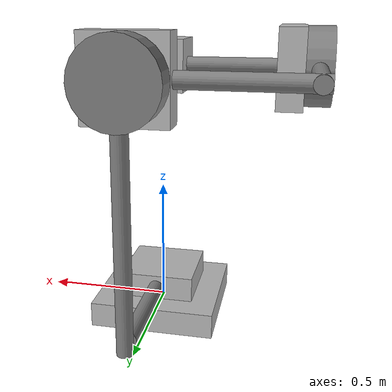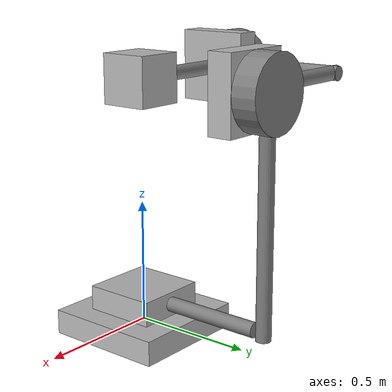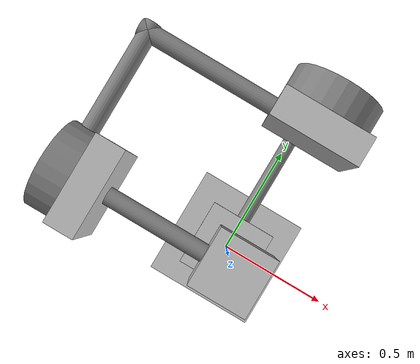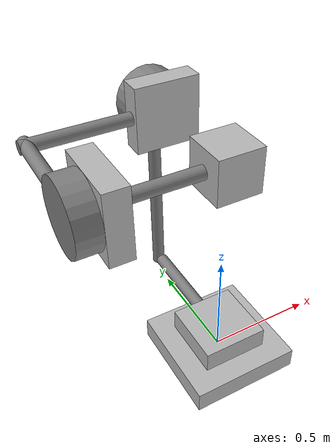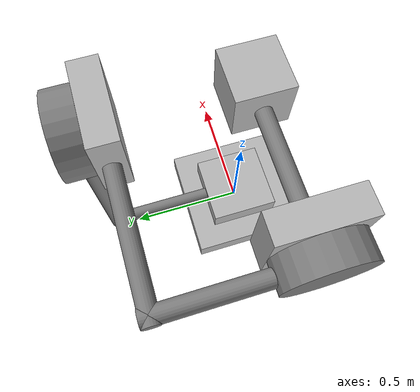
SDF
<?xml version="1.0" encoding="UTF-8"?>
<sdf version="1.6">
  <model name="three_axis_gimbal">
    <!-- base link -->
    <link name="gimbal_mount_link">
      <inertial>
        <mass>1</mass>
        <inertia><ixx>0.001</ixx><ixy>0</ixy><ixz>0</ixz><iyy>0.001</iyy><iyz>0</iyz><izz>0.001</izz></inertia>
      </inertial>
      <visual name="v"><geometry><box><size>0.5 0.5 0.1</size></box></geometry></visual>
      <collision name="c"><geometry><box><size>0.5 0.5 0.1</size></box></geometry></collision>

      <!-- IMU sensor - mounted on gimbal base -->
      <sensor name="imu_sensor" type="imu">
        <always_on>1</always_on>
        <update_rate>100</update_rate>
        <topic>/imu/data</topic>
        <imu>
          <angular_velocity>
            <x><noise type="gaussian"><mean>0</mean><stddev>0.009</stddev></noise></x>
            <y><noise type="gaussian"><mean>0</mean><stddev>0.009</stddev></noise></y>
            <z><noise type="gaussian"><mean>0</mean><stddev>0.009</stddev></noise></z>
          </angular_velocity>
          <linear_acceleration>
            <x><noise type="gaussian"><mean>0</mean><stddev>0.021</stddev></noise></x>
            <y><noise type="gaussian"><mean>0</mean><stddev>0.021</stddev></noise></y>
            <z><noise type="gaussian"><mean>0</mean><stddev>0.021</stddev></noise></z>
          </linear_acceleration>
        </imu>
      </sensor>
    </link>
    <!-- y raw link -->
    <link name="yaw_link">
      <inertial>
        <mass>0.5</mass>
        <inertia><ixx>0.001</ixx><iyy>0.001</iyy><izz>0.001</izz></inertia>
      </inertial>
      <pose>0 0 0.1 0 0 0</pose>
      <visual name="v">
        <geometry><box><size>0.3 0.3 0.1</size></box></geometry>
      </visual>
      <!-- gray round  -->
      <visual name="yaw_support_H">
        <pose>0 0.25 0 1.57 0 0</pose>
        <geometry>
          <cylinder>
            <radius>0.03</radius>
            <length>0.62</length>
          </cylinder>
        </geometry>
        <material>
          <ambient>0.5 0.5 0.5 1</ambient>
          <diffuse>0.5 0.5 0.5 1</diffuse>
          <specular>0.1 0.1 0.1 1</specular>
        </material>
      </visual>
      <!-- gray round  -->
      <visual name="yaw_support_V">
        <pose>0 0.6 0.45 0 0 0</pose>
        <geometry>
          <cylinder>
            <radius>0.03</radius>
            <length>0.96</length>
          </cylinder>
        </geometry>
        <material>
          <ambient>0.5 0.5 0.5 1</ambient>
          <diffuse>0.5 0.5 0.5 1</diffuse>
          <specular>0.1 0.1 0.1 1</specular>
        </material>
      </visual>
      <!-- gray round  -->
      <visual name="yaw_support_round">
        <pose>0 0.6 0.9 1.57 0 0</pose>
        <geometry>
          <cylinder>
            <radius>0.15</radius>
            <length>0.1</length>
          </cylinder>
        </geometry>
        <material>
          <ambient>0.5 0.5 0.5 1</ambient>
          <diffuse>0.5 0.5 0.5 1</diffuse>
          <specular>0.1 0.1 0.1 1</specular>
        </material>
      </visual>
    </link>
    <!-- joint y-raw to base -->
    <joint name="yaw_joint" type="revolute">
      <parent>gimbal_mount_link</parent>
      <child>yaw_link</child>
      <axis>
        <xyz>0 0 1</xyz>
        <limit><effort>50</effort><velocity>3</velocity></limit>

        <dynamics>
          <damping>0.2</damping>
          <friction>0.1</friction>
        </dynamics>

      </axis>
    </joint>
    <!-- z-row link -->
    <link name="pitch_link">
      <inertial>
        <mass>0.5</mass>
        <inertia><ixx>0.001</ixx><iyy>0.001</iyy><izz>0.001</izz></inertia>
      </inertial>
      <pose>0 0 1 0 0 0</pose>
      <visual name="v"><pose>0 0.5 0 0 0 0</pose><geometry><box><size>0.3 0.1 0.3</size></box></geometry></visual>
      <!-- gray round  -->
      <visual name="pitch_support_H">
        <pose>-0.25 0.5 0 0 1.57 0</pose>
        <geometry>
          <cylinder>
            <radius>0.03</radius>
            <length>0.76</length>
          </cylinder>
        </geometry>
        <material>
          <ambient>0.5 0.5 0.5 1</ambient>
          <diffuse>0.5 0.5 0.5 1</diffuse>
          <specular>0.1 0.1 0.1 1</specular>
        </material>
      </visual>
      <!-- gray round  -->
      <visual name="pitch_support_V">
        <pose>-0.6 0.25 0 1.57 0 0</pose>
        <geometry>
          <cylinder>
            <radius>0.03</radius>
            <length>0.56</length>
          </cylinder>
        </geometry>
        <material>
          <ambient>0.5 0.5 0.5 1</ambient>
          <diffuse>0.5 0.5 0.5 1</diffuse>
          <specular>0.1 0.1 0.1 1</specular>
        </material>
      </visual>
      <!-- gray round  -->
      <visual name="yaw_support_round">
        <pose>-0.6 0 0 0 1.57 0</pose>
        <geometry>
          <cylinder>
            <radius>0.15</radius>
            <length>0.1</length>
          </cylinder>
        </geometry>
        <material>
          <ambient>0.5 0.5 0.5 1</ambient>
          <diffuse>0.5 0.5 0.5 1</diffuse>
          <specular>0.1 0.1 0.1 1</specular>
        </material>
      </visual>
    </link>
    <!-- joint z-row to y-row -->
    <joint name="pitch_joint" type="revolute">
      <parent>yaw_link</parent>
      <child>pitch_link</child>
      <axis>
        <xyz>0 1 0</xyz>
        <limit><lower>-1.57</lower><upper>1.57</upper><effort>50</effort><velocity>2</velocity></limit>

        <dynamics>
          <damping>0.2</damping>
          <friction>0.1</friction>
        </dynamics>

      </axis>
    </joint>
    <!-- link x-row -->
    <link name="roll_link">
      <inertial>
        <mass>0.5</mass>
        <inertia><ixx>0.001</ixx><iyy>0.001</iyy><izz>0.001</izz></inertia>
      </inertial>
      <pose>0 0 1 0 0 0</pose>
      <visual name="v"><pose>-0.5 0 0 0 0 0</pose><geometry><box><size>0.1 0.3 0.3</size></box></geometry></visual>
      <!-- gray round  -->
      <visual name="roll_support">
        <pose>-0.25 0 0 0 1.57 0</pose>
        <geometry>
          <cylinder>
            <radius>0.03</radius>
            <length>0.56</length>
          </cylinder>
        </geometry>
        <material>
          <ambient>0.5 0.5 0.5 1</ambient>
          <diffuse>0.5 0.5 0.5 1</diffuse>
          <specular>0.1 0.1 0.1 1</specular>
        </material>
      </visual>
    </link>
    <!-- joint x-row to z-row -->
    <joint name="roll_joint" type="revolute">
      <parent>pitch_link</parent>
      <child>roll_link</child>
      <axis>
        <xyz>1 0 0</xyz>
        <limit><lower>-1.57</lower><upper>1.57</upper><effort>50</effort><velocity>2</velocity></limit>

        <dynamics>
          <damping>0.2</damping>
          <friction>0.1</friction>
        </dynamics>

      </axis>
    </joint>
    <!-- link camera -->
    <link name="camera_link">
      <inertial>
        <mass>0.1</mass>
        <inertia><ixx>0.001</ixx><iyy>0.001</iyy><izz>0.001</izz></inertia>
      </inertial>
      <pose>0 0 1 0 0 0</pose>
      <visual name="v"><geometry><box><size>0.2 0.2 0.2</size></box></geometry></visual>

      <!-- Camera sensor -->
      <sensor name="camera_sensor" type="camera">
        <pose>0 0 0 0 0 0</pose>
        <always_on>1</always_on>
        <update_rate>60</update_rate>
        <camera>
          <horizontal_fov>1.047</horizontal_fov>
          <image>
            <width>1280</width>
            <height>720</height>
            <format>R8G8B8</format>
          </image>
          <clip>
            <near>0.1</near>
            <far>100</far>
          </clip>
        </camera>
        <topic>/camera/image_raw</topic>
      </sensor>
      <sensor name="camera_imu" type="imu">
        <always_on>true</always_on>
        <update_rate>100</update_rate>
        <imu>
          <angular_velocity>
            <x>
              <noise type="gaussian">
                <mean>0.0</mean>
                <stddev>0.002</stddev>
              </noise>
            </x>
            <y>
              <noise type="gaussian">
                <mean>0.0</mean>
                <stddev>0.002</stddev>
              </noise>
            </y>
            <z>
              <noise type="gaussian">
                <mean>0.0</mean>
                <stddev>0.002</stddev>
              </noise>
            </z>
          </angular_velocity>
          <linear_acceleration>
            <x>
              <noise type="gaussian">
                <mean>0.0</mean>
                <stddev>0.017</stddev>
              </noise>
            </x>
            <y>
              <noise type="gaussian">
                <mean>0.0</mean>
                <stddev>0.017</stddev>
              </noise>
            </y>
            <z>
              <noise type="gaussian">
                <mean>0.0</mean>
                <stddev>0.017</stddev>
              </noise>
            </z>
          </linear_acceleration>
        </imu>
        <topic>/camera_imu/data_raw</topic>
      </sensor>

    </link>
    <!-- joint camera to x-row -->
    <joint name="camera_joint" type="fixed">
      <parent>roll_link</parent>
      <child>camera_link</child>
    </joint>

    <!-- Gimbal joint trajectory controller -->
    <plugin
      filename="gz-sim-joint-trajectory-controller-system"
      name="gz::sim::systems::JointTrajectoryController">
      <topic>/gimbal/joint_trajectory</topic>

      <joint_name>yaw_joint</joint_name>
      <initial_position>0.0</initial_position>
      <position_p_gain>5.0</position_p_gain>
      <position_i_gain>0</position_i_gain>
      <position_d_gain>1.5</position_d_gain>
      <position_i_min>-1.0</position_i_min>
      <position_i_max>1.0</position_i_max>
      <position_cmd_min>-20.0</position_cmd_min>
      <position_cmd_max>20.0</position_cmd_max>

      <joint_name>pitch_joint</joint_name>
      <initial_position>0.0</initial_position>
      <position_p_gain>5.0</position_p_gain>
      <position_i_gain>0</position_i_gain>
      <position_d_gain>1.5</position_d_gain>
      <position_i_min>-1.0</position_i_min>
      <position_i_max>1.0</position_i_max>
      <position_cmd_min>-20.0</position_cmd_min>
      <position_cmd_max>20.0</position_cmd_max>

      <joint_name>roll_joint</joint_name>
      <initial_position>0.0</initial_position>
      <position_p_gain>5.0</position_p_gain>
      <position_i_gain>0</position_i_gain>
      <position_d_gain>1.5</position_d_gain>
      <position_i_min>-1.0</position_i_min>
      <position_i_max>1.0</position_i_max>
      <position_cmd_min>-20.0</position_cmd_min>
      <position_cmd_max>20.0</position_cmd_max>
    </plugin>
  </model>
</sdf>
